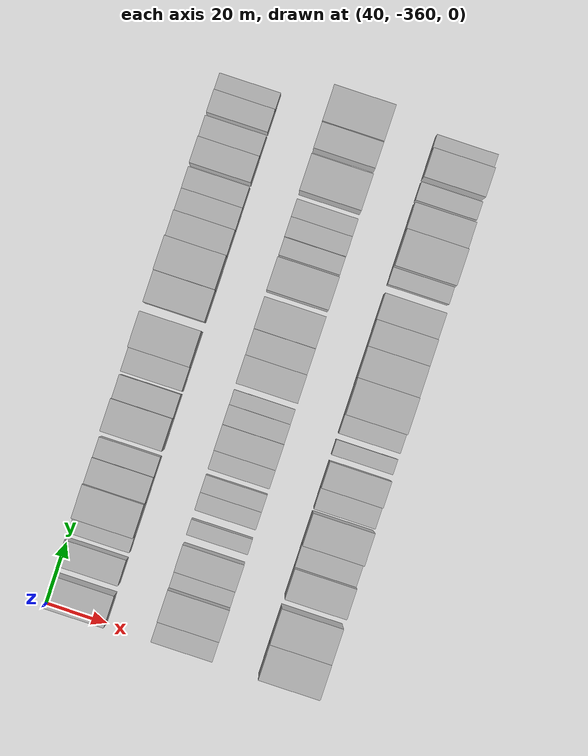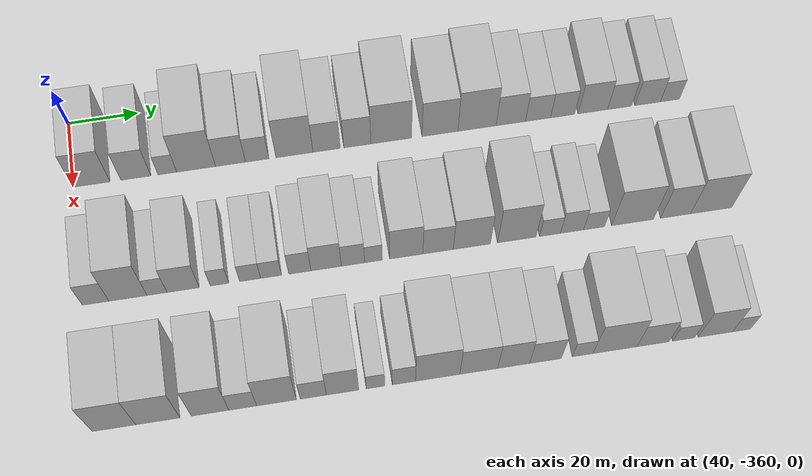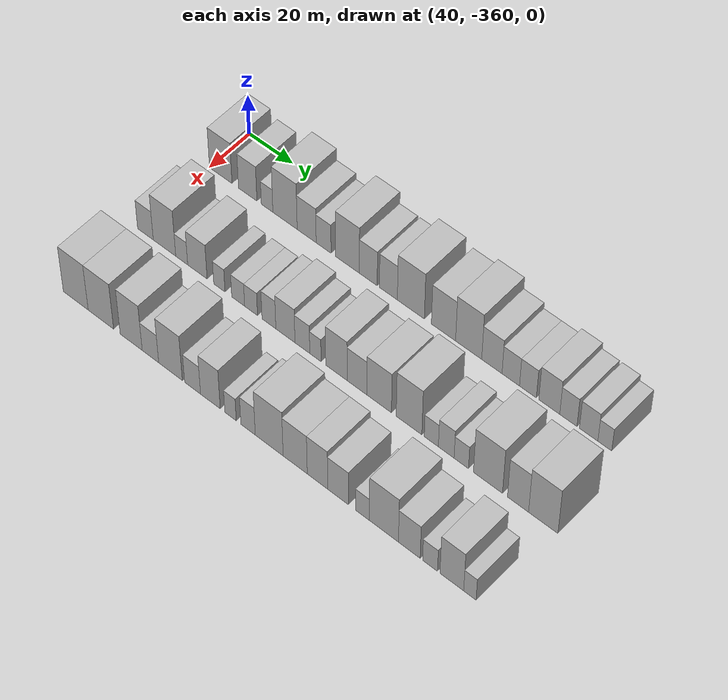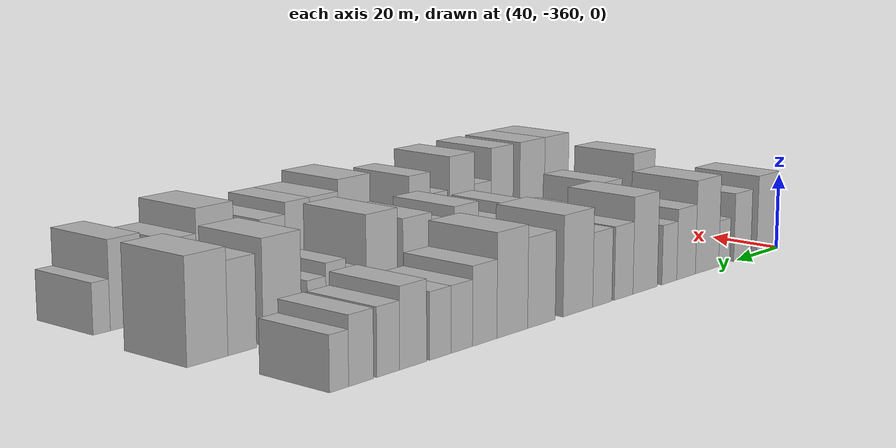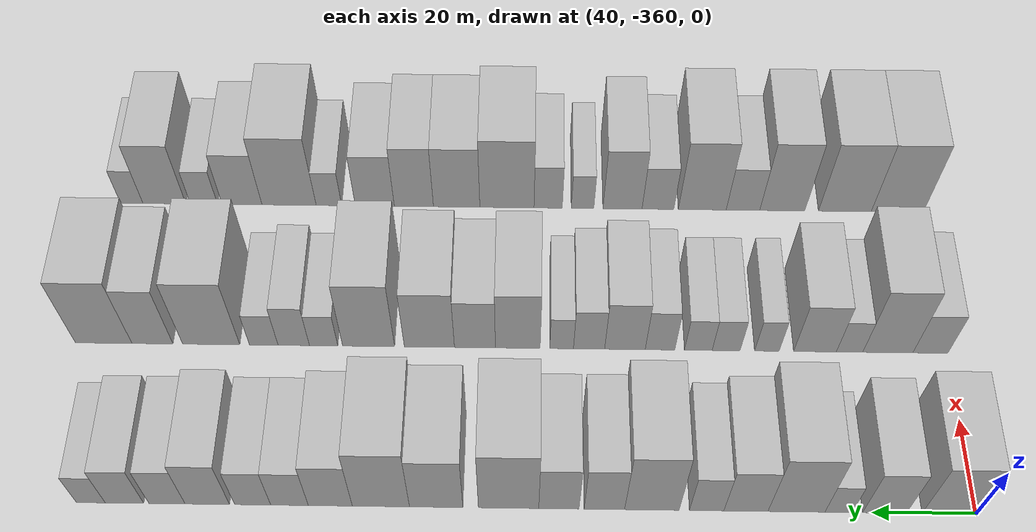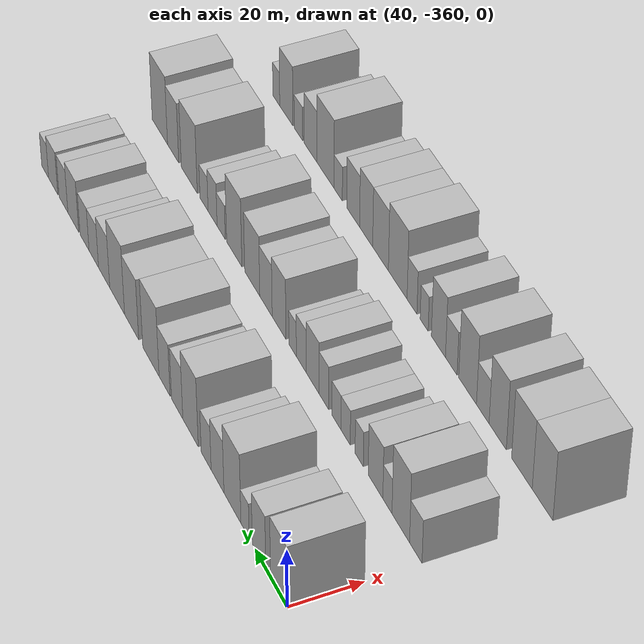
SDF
<sdf version="1.6">
 <world name="default">
  <model name="building_1">
   <static>1</static>
   <pose>50.0000 -354.8118 0 0.000000 0.000000 0.000000</pose>
   <link name="link">
    <pose>0 0 10.50 0 0 0</pose>
    <collision name="collision"><geometry><box><size>20.0000 10.3764 21.0000</size></box></geometry></collision>
    <visual name="visual">
     <cast_shadows>0</cast_shadows>
     <geometry><box><size>20.0000 10.3764 21.0000</size></box></geometry>
     <material>
      <script>
       <uri>model://HANNAS_wall/materials/scripts</uri>
       <uri>model://HANNAS_wall/materials/textures</uri>
       <name>vrc/HANNAS_wall</name>
      </script>
     </material>
    </visual>
   </link>
  </model>
  <model name="building_2">
   <static>1</static>
   <pose>50.0000 -342.4042 0 0.000000 0.000000 0.000000</pose>
   <link name="link">
    <pose>0 0 9.00 0 0 0</pose>
    <collision name="collision"><geometry><box><size>20.0000 8.4388 18.0000</size></box></geometry></collision>
    <visual name="visual">
     <cast_shadows>0</cast_shadows>
     <geometry><box><size>20.0000 8.4388 18.0000</size></box></geometry>
     <material>
      <script>
       <uri>model://HANNAS_wall/materials/scripts</uri>
       <uri>model://HANNAS_wall/materials/textures</uri>
       <name>vrc/HANNAS_wall</name>
      </script>
     </material>
    </visual>
   </link>
  </model>
  <model name="building_3">
   <static>1</static>
   <pose>50.0000 -333.5598 0 0.000000 0.000000 0.000000</pose>
   <link name="link">
    <pose>0 0 6.00 0 0 0</pose>
    <collision name="collision"><geometry><box><size>20.0000 5.2500 12.0000</size></box></geometry></collision>
    <visual name="visual">
     <cast_shadows>0</cast_shadows>
     <geometry><box><size>20.0000 5.2500 12.0000</size></box></geometry>
     <material>
      <script>
       <uri>model://HANNAS_wall/materials/scripts</uri>
       <uri>model://HANNAS_wall/materials/textures</uri>
       <name>vrc/HANNAS_wall</name>
      </script>
     </material>
    </visual>
   </link>
  </model>
  <model name="building_4">
   <static>1</static>
   <pose>50.0000 -325.4387 0 0.000000 0.000000 0.000000</pose>
   <link name="link">
    <pose>0 0 12.00 0 0 0</pose>
    <collision name="collision"><geometry><box><size>20.0000 10.9921 24.0000</size></box></geometry></collision>
    <visual name="visual">
     <cast_shadows>0</cast_shadows>
     <geometry><box><size>20.0000 10.9921 24.0000</size></box></geometry>
     <material>
      <script>
       <uri>model://HANNAS_wall/materials/scripts</uri>
       <uri>model://HANNAS_wall/materials/textures</uri>
       <name>vrc/HANNAS_wall</name>
      </script>
     </material>
    </visual>
   </link>
  </model>
  <model name="building_5">
   <static>1</static>
   <pose>50.0000 -315.6908 0 0.000000 0.000000 0.000000</pose>
   <link name="link">
    <pose>0 0 9.00 0 0 0</pose>
    <collision name="collision"><geometry><box><size>20.0000 8.5036 18.0000</size></box></geometry></collision>
    <visual name="visual">
     <cast_shadows>0</cast_shadows>
     <geometry><box><size>20.0000 8.5036 18.0000</size></box></geometry>
     <material>
      <script>
       <uri>model://HANNAS_wall/materials/scripts</uri>
       <uri>model://HANNAS_wall/materials/textures</uri>
       <name>vrc/HANNAS_wall</name>
      </script>
     </material>
    </visual>
   </link>
  </model>
  <model name="building_6">
   <static>1</static>
   <pose>50.0000 -308.1263 0 0.000000 0.000000 0.000000</pose>
   <link name="link">
    <pose>0 0 7.50 0 0 0</pose>
    <collision name="collision"><geometry><box><size>20.0000 6.6255 15.0000</size></box></geometry></collision>
    <visual name="visual">
     <cast_shadows>0</cast_shadows>
     <geometry><box><size>20.0000 6.6255 15.0000</size></box></geometry>
     <material>
      <script>
       <uri>model://HANNAS_wall/materials/scripts</uri>
       <uri>model://HANNAS_wall/materials/textures</uri>
       <name>vrc/HANNAS_wall</name>
      </script>
     </material>
    </visual>
   </link>
  </model>
  <model name="building_7">
   <static>1</static>
   <pose>50.0000 -297.5512 0 0.000000 0.000000 0.000000</pose>
   <link name="link">
    <pose>0 0 12.00 0 0 0</pose>
    <collision name="collision"><geometry><box><size>20.0000 10.5247 24.0000</size></box></geometry></collision>
    <visual name="visual">
     <cast_shadows>0</cast_shadows>
     <geometry><box><size>20.0000 10.5247 24.0000</size></box></geometry>
     <material>
      <script>
       <uri>model://HANNAS_wall/materials/scripts</uri>
       <uri>model://HANNAS_wall/materials/textures</uri>
       <name>vrc/HANNAS_wall</name>
      </script>
     </material>
    </visual>
   </link>
  </model>
  <model name="building_8">
   <static>1</static>
   <pose>50.0000 -288.3917 0 0.000000 0.000000 0.000000</pose>
   <link name="link">
    <pose>0 0 9.00 0 0 0</pose>
    <collision name="collision"><geometry><box><size>20.0000 7.7943 18.0000</size></box></geometry></collision>
    <visual name="visual">
     <cast_shadows>0</cast_shadows>
     <geometry><box><size>20.0000 7.7943 18.0000</size></box></geometry>
     <material>
      <script>
       <uri>model://HANNAS_wall/materials/scripts</uri>
       <uri>model://HANNAS_wall/materials/textures</uri>
       <name>vrc/HANNAS_wall</name>
      </script>
     </material>
    </visual>
   </link>
  </model>
  <model name="building_9">
   <static>1</static>
   <pose>50.0000 -279.6073 0 0.000000 0.000000 0.000000</pose>
   <link name="link">
    <pose>0 0 9.00 0 0 0</pose>
    <collision name="collision"><geometry><box><size>20.0000 7.7746 18.0000</size></box></geometry></collision>
    <visual name="visual">
     <cast_shadows>0</cast_shadows>
     <geometry><box><size>20.0000 7.7746 18.0000</size></box></geometry>
     <material>
      <script>
       <uri>model://HANNAS_wall/materials/scripts</uri>
       <uri>model://HANNAS_wall/materials/textures</uri>
       <name>vrc/HANNAS_wall</name>
      </script>
     </material>
    </visual>
   </link>
  </model>
  <model name="building_10">
   <static>1</static>
   <pose>50.0000 -269.8928 0 0.000000 0.000000 0.000000</pose>
   <link name="link">
    <pose>0 0 12.00 0 0 0</pose>
    <collision name="collision"><geometry><box><size>20.0000 11.6544 24.0000</size></box></geometry></collision>
    <visual name="visual">
     <cast_shadows>0</cast_shadows>
     <geometry><box><size>20.0000 11.6544 24.0000</size></box></geometry>
     <material>
      <script>
       <uri>model://HANNAS_wall/materials/scripts</uri>
       <uri>model://HANNAS_wall/materials/textures</uri>
       <name>vrc/HANNAS_wall</name>
      </script>
     </material>
    </visual>
   </link>
  </model>
  <model name="building_11">
   <static>1</static>
   <pose>50.0000 -255.9032 0 0.000000 0.000000 0.000000</pose>
   <link name="link">
    <pose>0 0 10.50 0 0 0</pose>
    <collision name="collision"><geometry><box><size>20.0000 10.3248 21.0000</size></box></geometry></collision>
    <visual name="visual">
     <cast_shadows>0</cast_shadows>
     <geometry><box><size>20.0000 10.3248 21.0000</size></box></geometry>
     <material>
      <script>
       <uri>model://HANNAS_wall/materials/scripts</uri>
       <uri>model://HANNAS_wall/materials/textures</uri>
       <name>vrc/HANNAS_wall</name>
      </script>
     </material>
    </visual>
   </link>
  </model>
  <model name="building_12">
   <static>1</static>
   <pose>50.0000 -245.2135 0 0.000000 0.000000 0.000000</pose>
   <link name="link">
    <pose>0 0 12.00 0 0 0</pose>
    <collision name="collision"><geometry><box><size>20.0000 11.0546 24.0000</size></box></geometry></collision>
    <visual name="visual">
     <cast_shadows>0</cast_shadows>
     <geometry><box><size>20.0000 11.0546 24.0000</size></box></geometry>
     <material>
      <script>
       <uri>model://HANNAS_wall/materials/scripts</uri>
       <uri>model://HANNAS_wall/materials/textures</uri>
       <name>vrc/HANNAS_wall</name>
      </script>
     </material>
    </visual>
   </link>
  </model>
  <model name="building_13">
   <static>1</static>
   <pose>50.0000 -235.4273 0 0.000000 0.000000 0.000000</pose>
   <link name="link">
    <pose>0 0 9.00 0 0 0</pose>
    <collision name="collision"><geometry><box><size>20.0000 8.5178 18.0000</size></box></geometry></collision>
    <visual name="visual">
     <cast_shadows>0</cast_shadows>
     <geometry><box><size>20.0000 8.5178 18.0000</size></box></geometry>
     <material>
      <script>
       <uri>model://HANNAS_wall/materials/scripts</uri>
       <uri>model://HANNAS_wall/materials/textures</uri>
       <name>vrc/HANNAS_wall</name>
      </script>
     </material>
    </visual>
   </link>
  </model>
  <model name="building_14">
   <static>1</static>
   <pose>50.0000 -227.5237 0 0.000000 0.000000 0.000000</pose>
   <link name="link">
    <pose>0 0 7.50 0 0 0</pose>
    <collision name="collision"><geometry><box><size>20.0000 7.2894 15.0000</size></box></geometry></collision>
    <visual name="visual">
     <cast_shadows>0</cast_shadows>
     <geometry><box><size>20.0000 7.2894 15.0000</size></box></geometry>
     <material>
      <script>
       <uri>model://HANNAS_wall/materials/scripts</uri>
       <uri>model://HANNAS_wall/materials/textures</uri>
       <name>vrc/HANNAS_wall</name>
      </script>
     </material>
    </visual>
   </link>
  </model>
  <model name="building_15">
   <static>1</static>
   <pose>50.0000 -220.3886 0 0.000000 0.000000 0.000000</pose>
   <link name="link">
    <pose>0 0 7.50 0 0 0</pose>
    <collision name="collision"><geometry><box><size>20.0000 6.9809 15.0000</size></box></geometry></collision>
    <visual name="visual">
     <cast_shadows>0</cast_shadows>
     <geometry><box><size>20.0000 6.9809 15.0000</size></box></geometry>
     <material>
      <script>
       <uri>model://HANNAS_wall/materials/scripts</uri>
       <uri>model://HANNAS_wall/materials/textures</uri>
       <name>vrc/HANNAS_wall</name>
      </script>
     </material>
    </visual>
   </link>
  </model>
  <model name="building_16">
   <static>1</static>
   <pose>50.0000 -211.5945 0 0.000000 0.000000 0.000000</pose>
   <link name="link">
    <pose>0 0 9.00 0 0 0</pose>
    <collision name="collision"><geometry><box><size>20.0000 8.6072 18.0000</size></box></geometry></collision>
    <visual name="visual">
     <cast_shadows>0</cast_shadows>
     <geometry><box><size>20.0000 8.6072 18.0000</size></box></geometry>
     <material>
      <script>
       <uri>model://HANNAS_wall/materials/scripts</uri>
       <uri>model://HANNAS_wall/materials/textures</uri>
       <name>vrc/HANNAS_wall</name>
      </script>
     </material>
    </visual>
   </link>
  </model>
  <model name="building_17">
   <static>1</static>
   <pose>50.0000 -203.7784 0 0.000000 0.000000 0.000000</pose>
   <link name="link">
    <pose>0 0 7.50 0 0 0</pose>
    <collision name="collision"><geometry><box><size>20.0000 7.0250 15.0000</size></box></geometry></collision>
    <visual name="visual">
     <cast_shadows>0</cast_shadows>
     <geometry><box><size>20.0000 7.0250 15.0000</size></box></geometry>
     <material>
      <script>
       <uri>model://HANNAS_wall/materials/scripts</uri>
       <uri>model://HANNAS_wall/materials/textures</uri>
       <name>vrc/HANNAS_wall</name>
      </script>
     </material>
    </visual>
   </link>
  </model>
  <model name="building_18">
   <static>1</static>
   <pose>50.0000 -195.5371 0 0.000000 0.000000 0.000000</pose>
   <link name="link">
    <pose>0 0 7.50 0 0 0</pose>
    <collision name="collision"><geometry><box><size>20.0000 7.4577 15.0000</size></box></geometry></collision>
    <visual name="visual">
     <cast_shadows>0</cast_shadows>
     <geometry><box><size>20.0000 7.4577 15.0000</size></box></geometry>
     <material>
      <script>
       <uri>model://HANNAS_wall/materials/scripts</uri>
       <uri>model://HANNAS_wall/materials/textures</uri>
       <name>vrc/HANNAS_wall</name>
      </script>
     </material>
    </visual>
   </link>
  </model>
  <model name="building_19">
   <static>1</static>
   <pose>50.0000 -189.0080 0 0.000000 0.000000 0.000000</pose>
   <link name="link">
    <pose>0 0 6.00 0 0 0</pose>
    <collision name="collision"><geometry><box><size>20.0000 5.6005 12.0000</size></box></geometry></collision>
    <visual name="visual">
     <cast_shadows>0</cast_shadows>
     <geometry><box><size>20.0000 5.6005 12.0000</size></box></geometry>
     <material>
      <script>
       <uri>model://HANNAS_wall/materials/scripts</uri>
       <uri>model://HANNAS_wall/materials/textures</uri>
       <name>vrc/HANNAS_wall</name>
      </script>
     </material>
    </visual>
   </link>
  </model>
  <model name="building_77">
   <static>1</static>
   <pose>85.0000 -356.3956 0 0.000000 0.000000 0.000000</pose>
   <link name="link">
    <pose>0 0 7.50 0 0 0</pose>
    <collision name="collision"><geometry><box><size>20.0000 7.2088 15.0000</size></box></geometry></collision>
    <visual name="visual">
     <cast_shadows>0</cast_shadows>
     <geometry><box><size>20.0000 7.2088 15.0000</size></box></geometry>
     <material>
      <script>
       <uri>model://HANNAS_wall/materials/scripts</uri>
       <uri>model://HANNAS_wall/materials/textures</uri>
       <name>vrc/HANNAS_wall</name>
      </script>
     </material>
    </visual>
   </link>
  </model>
  <model name="building_78">
   <static>1</static>
   <pose>85.0000 -347.6329 0 0.000000 0.000000 0.000000</pose>
   <link name="link">
    <pose>0 0 12.00 0 0 0</pose>
    <collision name="collision"><geometry><box><size>20.0000 10.3166 24.0000</size></box></geometry></collision>
    <visual name="visual">
     <cast_shadows>0</cast_shadows>
     <geometry><box><size>20.0000 10.3166 24.0000</size></box></geometry>
     <material>
      <script>
       <uri>model://HANNAS_wall/materials/scripts</uri>
       <uri>model://HANNAS_wall/materials/textures</uri>
       <name>vrc/HANNAS_wall</name>
      </script>
     </material>
    </visual>
   </link>
  </model>
  <model name="building_79">
   <static>1</static>
   <pose>85.0000 -339.7502 0 0.000000 0.000000 0.000000</pose>
   <link name="link">
    <pose>0 0 6.00 0 0 0</pose>
    <collision name="collision"><geometry><box><size>20.0000 5.4487 12.0000</size></box></geometry></collision>
    <visual name="visual">
     <cast_shadows>0</cast_shadows>
     <geometry><box><size>20.0000 5.4487 12.0000</size></box></geometry>
     <material>
      <script>
       <uri>model://HANNAS_wall/materials/scripts</uri>
       <uri>model://HANNAS_wall/materials/textures</uri>
       <name>vrc/HANNAS_wall</name>
      </script>
     </material>
    </visual>
   </link>
  </model>
  <model name="building_80">
   <static>1</static>
   <pose>85.0000 -332.6260 0 0.000000 0.000000 0.000000</pose>
   <link name="link">
    <pose>0 0 9.00 0 0 0</pose>
    <collision name="collision"><geometry><box><size>20.0000 8.7995 18.0000</size></box></geometry></collision>
    <visual name="visual">
     <cast_shadows>0</cast_shadows>
     <geometry><box><size>20.0000 8.7995 18.0000</size></box></geometry>
     <material>
      <script>
       <uri>model://HANNAS_wall/materials/scripts</uri>
       <uri>model://HANNAS_wall/materials/textures</uri>
       <name>vrc/HANNAS_wall</name>
      </script>
     </material>
    </visual>
   </link>
  </model>
  <model name="building_81">
   <static>1</static>
   <pose>85.0000 -322.7000 0 0.000000 0.000000 0.000000</pose>
   <link name="link">
    <pose>0 0 6.00 0 0 0</pose>
    <collision name="collision"><geometry><box><size>20.0000 5.0526 12.0000</size></box></geometry></collision>
    <visual name="visual">
     <cast_shadows>0</cast_shadows>
     <geometry><box><size>20.0000 5.0526 12.0000</size></box></geometry>
     <material>
      <script>
       <uri>model://HANNAS_wall/materials/scripts</uri>
       <uri>model://HANNAS_wall/materials/textures</uri>
       <name>vrc/HANNAS_wall</name>
      </script>
     </material>
    </visual>
   </link>
  </model>
  <model name="building_82">
   <static>1</static>
   <pose>85.0000 -314.2909 0 0.000000 0.000000 0.000000</pose>
   <link name="link">
    <pose>0 0 6.00 0 0 0</pose>
    <collision name="collision"><geometry><box><size>20.0000 5.7656 12.0000</size></box></geometry></collision>
    <visual name="visual">
     <cast_shadows>0</cast_shadows>
     <geometry><box><size>20.0000 5.7656 12.0000</size></box></geometry>
     <material>
      <script>
       <uri>model://HANNAS_wall/materials/scripts</uri>
       <uri>model://HANNAS_wall/materials/textures</uri>
       <name>vrc/HANNAS_wall</name>
      </script>
     </material>
    </visual>
   </link>
  </model>
  <model name="building_83">
   <static>1</static>
   <pose>85.0000 -308.5526 0 0.000000 0.000000 0.000000</pose>
   <link name="link">
    <pose>0 0 6.00 0 0 0</pose>
    <collision name="collision"><geometry><box><size>20.0000 5.7109 12.0000</size></box></geometry></collision>
    <visual name="visual">
     <cast_shadows>0</cast_shadows>
     <geometry><box><size>20.0000 5.7109 12.0000</size></box></geometry>
     <material>
      <script>
       <uri>model://HANNAS_wall/materials/scripts</uri>
       <uri>model://HANNAS_wall/materials/textures</uri>
       <name>vrc/HANNAS_wall</name>
      </script>
     </material>
    </visual>
   </link>
  </model>
  <model name="building_84">
   <static>1</static>
   <pose>85.0000 -300.6448 0 0.000000 0.000000 0.000000</pose>
   <link name="link">
    <pose>0 0 7.50 0 0 0</pose>
    <collision name="collision"><geometry><box><size>20.0000 6.1047 15.0000</size></box></geometry></collision>
    <visual name="visual">
     <cast_shadows>0</cast_shadows>
     <geometry><box><size>20.0000 6.1047 15.0000</size></box></geometry>
     <material>
      <script>
       <uri>model://HANNAS_wall/materials/scripts</uri>
       <uri>model://HANNAS_wall/materials/textures</uri>
       <name>vrc/HANNAS_wall</name>
      </script>
     </material>
    </visual>
   </link>
  </model>
  <model name="building_85">
   <static>1</static>
   <pose>85.0000 -293.4027 0 0.000000 0.000000 0.000000</pose>
   <link name="link">
    <pose>0 0 9.00 0 0 0</pose>
    <collision name="collision"><geometry><box><size>20.0000 8.3795 18.0000</size></box></geometry></collision>
    <visual name="visual">
     <cast_shadows>0</cast_shadows>
     <geometry><box><size>20.0000 8.3795 18.0000</size></box></geometry>
     <material>
      <script>
       <uri>model://HANNAS_wall/materials/scripts</uri>
       <uri>model://HANNAS_wall/materials/textures</uri>
       <name>vrc/HANNAS_wall</name>
      </script>
     </material>
    </visual>
   </link>
  </model>
  <model name="building_86">
   <static>1</static>
   <pose>85.0000 -285.9893 0 0.000000 0.000000 0.000000</pose>
   <link name="link">
    <pose>0 0 7.50 0 0 0</pose>
    <collision name="collision"><geometry><box><size>20.0000 6.4473 15.0000</size></box></geometry></collision>
    <visual name="visual">
     <cast_shadows>0</cast_shadows>
     <geometry><box><size>20.0000 6.4473 15.0000</size></box></geometry>
     <material>
      <script>
       <uri>model://HANNAS_wall/materials/scripts</uri>
       <uri>model://HANNAS_wall/materials/textures</uri>
       <name>vrc/HANNAS_wall</name>
      </script>
     </material>
    </visual>
   </link>
  </model>
  <model name="building_87">
   <static>1</static>
   <pose>85.0000 -280.3194 0 0.000000 0.000000 0.000000</pose>
   <link name="link">
    <pose>0 0 6.00 0 0 0</pose>
    <collision name="collision"><geometry><box><size>20.0000 4.8926 12.0000</size></box></geometry></collision>
    <visual name="visual">
     <cast_shadows>0</cast_shadows>
     <geometry><box><size>20.0000 4.8926 12.0000</size></box></geometry>
     <material>
      <script>
       <uri>model://HANNAS_wall/materials/scripts</uri>
       <uri>model://HANNAS_wall/materials/textures</uri>
       <name>vrc/HANNAS_wall</name>
      </script>
     </material>
    </visual>
   </link>
  </model>
  <model name="building_88">
   <static>1</static>
   <pose>85.0000 -271.2597 0 0.000000 0.000000 0.000000</pose>
   <link name="link">
    <pose>0 0 10.50 0 0 0</pose>
    <collision name="collision"><geometry><box><size>20.0000 9.2269 21.0000</size></box></geometry></collision>
    <visual name="visual">
     <cast_shadows>0</cast_shadows>
     <geometry><box><size>20.0000 9.2269 21.0000</size></box></geometry>
     <material>
      <script>
       <uri>model://HANNAS_wall/materials/scripts</uri>
       <uri>model://HANNAS_wall/materials/textures</uri>
       <name>vrc/HANNAS_wall</name>
      </script>
     </material>
    </visual>
   </link>
  </model>
  <model name="building_89">
   <static>1</static>
   <pose>85.0000 -262.4094 0 0.000000 0.000000 0.000000</pose>
   <link name="link">
    <pose>0 0 9.00 0 0 0</pose>
    <collision name="collision"><geometry><box><size>20.0000 8.4737 18.0000</size></box></geometry></collision>
    <visual name="visual">
     <cast_shadows>0</cast_shadows>
     <geometry><box><size>20.0000 8.4737 18.0000</size></box></geometry>
     <material>
      <script>
       <uri>model://HANNAS_wall/materials/scripts</uri>
       <uri>model://HANNAS_wall/materials/textures</uri>
       <name>vrc/HANNAS_wall</name>
      </script>
     </material>
    </visual>
   </link>
  </model>
  <model name="building_90">
   <static>1</static>
   <pose>85.0000 -252.9855 0 0.000000 0.000000 0.000000</pose>
   <link name="link">
    <pose>0 0 10.50 0 0 0</pose>
    <collision name="collision"><geometry><box><size>20.0000 10.3741 21.0000</size></box></geometry></collision>
    <visual name="visual">
     <cast_shadows>0</cast_shadows>
     <geometry><box><size>20.0000 10.3741 21.0000</size></box></geometry>
     <material>
      <script>
       <uri>model://HANNAS_wall/materials/scripts</uri>
       <uri>model://HANNAS_wall/materials/textures</uri>
       <name>vrc/HANNAS_wall</name>
      </script>
     </material>
    </visual>
   </link>
  </model>
  <model name="building_91">
   <static>1</static>
   <pose>85.0000 -240.4141 0 0.000000 0.000000 0.000000</pose>
   <link name="link">
    <pose>0 0 12.00 0 0 0</pose>
    <collision name="collision"><geometry><box><size>20.0000 10.7686 24.0000</size></box></geometry></collision>
    <visual name="visual">
     <cast_shadows>0</cast_shadows>
     <geometry><box><size>20.0000 10.7686 24.0000</size></box></geometry>
     <material>
      <script>
       <uri>model://HANNAS_wall/materials/scripts</uri>
       <uri>model://HANNAS_wall/materials/textures</uri>
       <name>vrc/HANNAS_wall</name>
      </script>
     </material>
    </visual>
   </link>
  </model>
  <model name="building_92">
   <static>1</static>
   <pose>85.0000 -231.0926 0 0.000000 0.000000 0.000000</pose>
   <link name="link">
    <pose>0 0 6.00 0 0 0</pose>
    <collision name="collision"><geometry><box><size>20.0000 5.8745 12.0000</size></box></geometry></collision>
    <visual name="visual">
     <cast_shadows>0</cast_shadows>
     <geometry><box><size>20.0000 5.8745 12.0000</size></box></geometry>
     <material>
      <script>
       <uri>model://HANNAS_wall/materials/scripts</uri>
       <uri>model://HANNAS_wall/materials/textures</uri>
       <name>vrc/HANNAS_wall</name>
      </script>
     </material>
    </visual>
   </link>
  </model>
  <model name="building_93">
   <static>1</static>
   <pose>85.0000 -224.9007 0 0.000000 0.000000 0.000000</pose>
   <link name="link">
    <pose>0 0 7.50 0 0 0</pose>
    <collision name="collision"><geometry><box><size>20.0000 6.5094 15.0000</size></box></geometry></collision>
    <visual name="visual">
     <cast_shadows>0</cast_shadows>
     <geometry><box><size>20.0000 6.5094 15.0000</size></box></geometry>
     <material>
      <script>
       <uri>model://HANNAS_wall/materials/scripts</uri>
       <uri>model://HANNAS_wall/materials/textures</uri>
       <name>vrc/HANNAS_wall</name>
      </script>
     </material>
    </visual>
   </link>
  </model>
  <model name="building_94">
   <static>1</static>
   <pose>85.0000 -218.6819 0 0.000000 0.000000 0.000000</pose>
   <link name="link">
    <pose>0 0 6.00 0 0 0</pose>
    <collision name="collision"><geometry><box><size>20.0000 5.9282 12.0000</size></box></geometry></collision>
    <visual name="visual">
     <cast_shadows>0</cast_shadows>
     <geometry><box><size>20.0000 5.9282 12.0000</size></box></geometry>
     <material>
      <script>
       <uri>model://HANNAS_wall/materials/scripts</uri>
       <uri>model://HANNAS_wall/materials/textures</uri>
       <name>vrc/HANNAS_wall</name>
      </script>
     </material>
    </visual>
   </link>
  </model>
  <model name="building_95">
   <static>1</static>
   <pose>85.0000 -207.7862 0 0.000000 0.000000 0.000000</pose>
   <link name="link">
    <pose>0 0 12.00 0 0 0</pose>
    <collision name="collision"><geometry><box><size>20.0000 11.8632 24.0000</size></box></geometry></collision>
    <visual name="visual">
     <cast_shadows>0</cast_shadows>
     <geometry><box><size>20.0000 11.8632 24.0000</size></box></geometry>
     <material>
      <script>
       <uri>model://HANNAS_wall/materials/scripts</uri>
       <uri>model://HANNAS_wall/materials/textures</uri>
       <name>vrc/HANNAS_wall</name>
      </script>
     </material>
    </visual>
   </link>
  </model>
  <model name="building_96">
   <static>1</static>
   <pose>85.0000 -195.6012 0 0.000000 0.000000 0.000000</pose>
   <link name="link">
    <pose>0 0 10.50 0 0 0</pose>
    <collision name="collision"><geometry><box><size>20.0000 8.5069 21.0000</size></box></geometry></collision>
    <visual name="visual">
     <cast_shadows>0</cast_shadows>
     <geometry><box><size>20.0000 8.5069 21.0000</size></box></geometry>
     <material>
      <script>
       <uri>model://HANNAS_wall/materials/scripts</uri>
       <uri>model://HANNAS_wall/materials/textures</uri>
       <name>vrc/HANNAS_wall</name>
      </script>
     </material>
    </visual>
   </link>
  </model>
  <model name="building_97">
   <static>1</static>
   <pose>85.0000 -185.4693 0 0.000000 0.000000 0.000000</pose>
   <link name="link">
    <pose>0 0 12.00 0 0 0</pose>
    <collision name="collision"><geometry><box><size>20.0000 11.7568 24.0000</size></box></geometry></collision>
    <visual name="visual">
     <cast_shadows>0</cast_shadows>
     <geometry><box><size>20.0000 11.7568 24.0000</size></box></geometry>
     <material>
      <script>
       <uri>model://HANNAS_wall/materials/scripts</uri>
       <uri>model://HANNAS_wall/materials/textures</uri>
       <name>vrc/HANNAS_wall</name>
      </script>
     </material>
    </visual>
   </link>
  </model>
  <model name="building_161">
   <static>1</static>
   <pose>120.0000 -354.2962 0 0.000000 0.000000 0.000000</pose>
   <link name="link">
    <pose>0 0 12.00 0 0 0</pose>
    <collision name="collision"><geometry><box><size>20.0000 11.4076 24.0000</size></box></geometry></collision>
    <visual name="visual">
     <cast_shadows>0</cast_shadows>
     <geometry><box><size>20.0000 11.4076 24.0000</size></box></geometry>
     <material>
      <script>
       <uri>model://HANNAS_wall/materials/scripts</uri>
       <uri>model://HANNAS_wall/materials/textures</uri>
       <name>vrc/HANNAS_wall</name>
      </script>
     </material>
    </visual>
   </link>
  </model>
  <model name="building_162">
   <static>1</static>
   <pose>120.0000 -342.7983 0 0.000000 0.000000 0.000000</pose>
   <link name="link">
    <pose>0 0 12.00 0 0 0</pose>
    <collision name="collision"><geometry><box><size>20.0000 11.5882 24.0000</size></box></geometry></collision>
    <visual name="visual">
     <cast_shadows>0</cast_shadows>
     <geometry><box><size>20.0000 11.5882 24.0000</size></box></geometry>
     <material>
      <script>
       <uri>model://HANNAS_wall/materials/scripts</uri>
       <uri>model://HANNAS_wall/materials/textures</uri>
       <name>vrc/HANNAS_wall</name>
      </script>
     </material>
    </visual>
   </link>
  </model>
  <model name="building_163">
   <static>1</static>
   <pose>120.0000 -329.0486 0 0.000000 0.000000 0.000000</pose>
   <link name="link">
    <pose>0 0 12.00 0 0 0</pose>
    <collision name="collision"><geometry><box><size>20.0000 9.9110 24.0000</size></box></geometry></collision>
    <visual name="visual">
     <cast_shadows>0</cast_shadows>
     <geometry><box><size>20.0000 9.9110 24.0000</size></box></geometry>
     <material>
      <script>
       <uri>model://HANNAS_wall/materials/scripts</uri>
       <uri>model://HANNAS_wall/materials/textures</uri>
       <name>vrc/HANNAS_wall</name>
      </script>
     </material>
    </visual>
   </link>
  </model>
  <model name="building_164">
   <static>1</static>
   <pose>120.0000 -320.4059 0 0.000000 0.000000 0.000000</pose>
   <link name="link">
    <pose>0 0 7.50 0 0 0</pose>
    <collision name="collision"><geometry><box><size>20.0000 7.3745 15.0000</size></box></geometry></collision>
    <visual name="visual">
     <cast_shadows>0</cast_shadows>
     <geometry><box><size>20.0000 7.3745 15.0000</size></box></geometry>
     <material>
      <script>
       <uri>model://HANNAS_wall/materials/scripts</uri>
       <uri>model://HANNAS_wall/materials/textures</uri>
       <name>vrc/HANNAS_wall</name>
      </script>
     </material>
    </visual>
   </link>
  </model>
  <model name="building_165">
   <static>1</static>
   <pose>120.0000 -311.4605 0 0.000000 0.000000 0.000000</pose>
   <link name="link">
    <pose>0 0 12.00 0 0 0</pose>
    <collision name="collision"><geometry><box><size>20.0000 10.5162 24.0000</size></box></geometry></collision>
    <visual name="visual">
     <cast_shadows>0</cast_shadows>
     <geometry><box><size>20.0000 10.5162 24.0000</size></box></geometry>
     <material>
      <script>
       <uri>model://HANNAS_wall/materials/scripts</uri>
       <uri>model://HANNAS_wall/materials/textures</uri>
       <name>vrc/HANNAS_wall</name>
      </script>
     </material>
    </visual>
   </link>
  </model>
  <model name="building_166">
   <static>1</static>
   <pose>120.0000 -301.7058 0 0.000000 0.000000 0.000000</pose>
   <link name="link">
    <pose>0 0 7.50 0 0 0</pose>
    <collision name="collision"><geometry><box><size>20.0000 6.9933 15.0000</size></box></geometry></collision>
    <visual name="visual">
     <cast_shadows>0</cast_shadows>
     <geometry><box><size>20.0000 6.9933 15.0000</size></box></geometry>
     <material>
      <script>
       <uri>model://HANNAS_wall/materials/scripts</uri>
       <uri>model://HANNAS_wall/materials/textures</uri>
       <name>vrc/HANNAS_wall</name>
      </script>
     </material>
    </visual>
   </link>
  </model>
  <model name="building_167">
   <static>1</static>
   <pose>120.0000 -293.9059 0 0.000000 0.000000 0.000000</pose>
   <link name="link">
    <pose>0 0 10.50 0 0 0</pose>
    <collision name="collision"><geometry><box><size>20.0000 8.6064 21.0000</size></box></geometry></collision>
    <visual name="visual">
     <cast_shadows>0</cast_shadows>
     <geometry><box><size>20.0000 8.6064 21.0000</size></box></geometry>
     <material>
      <script>
       <uri>model://HANNAS_wall/materials/scripts</uri>
       <uri>model://HANNAS_wall/materials/textures</uri>
       <name>vrc/HANNAS_wall</name>
      </script>
     </material>
    </visual>
   </link>
  </model>
  <model name="building_168">
   <static>1</static>
   <pose>120.0000 -285.1209 0 0.000000 0.000000 0.000000</pose>
   <link name="link">
    <pose>0 0 6.00 0 0 0</pose>
    <collision name="collision"><geometry><box><size>20.0000 4.9636 12.0000</size></box></geometry></collision>
    <visual name="visual">
     <cast_shadows>0</cast_shadows>
     <geometry><box><size>20.0000 4.9636 12.0000</size></box></geometry>
     <material>
      <script>
       <uri>model://HANNAS_wall/materials/scripts</uri>
       <uri>model://HANNAS_wall/materials/textures</uri>
       <name>vrc/HANNAS_wall</name>
      </script>
     </material>
    </visual>
   </link>
  </model>
  <model name="building_169">
   <static>1</static>
   <pose>120.0000 -277.5368 0 0.000000 0.000000 0.000000</pose>
   <link name="link">
    <pose>0 0 7.50 0 0 0</pose>
    <collision name="collision"><geometry><box><size>20.0000 6.2046 15.0000</size></box></geometry></collision>
    <visual name="visual">
     <cast_shadows>0</cast_shadows>
     <geometry><box><size>20.0000 6.2046 15.0000</size></box></geometry>
     <material>
      <script>
       <uri>model://HANNAS_wall/materials/scripts</uri>
       <uri>model://HANNAS_wall/materials/textures</uri>
       <name>vrc/HANNAS_wall</name>
      </script>
     </material>
    </visual>
   </link>
  </model>
  <model name="building_170">
   <static>1</static>
   <pose>120.0000 -268.4713 0 0.000000 0.000000 0.000000</pose>
   <link name="link">
    <pose>0 0 12.00 0 0 0</pose>
    <collision name="collision"><geometry><box><size>20.0000 11.9263 24.0000</size></box></geometry></collision>
    <visual name="visual">
     <cast_shadows>0</cast_shadows>
     <geometry><box><size>20.0000 11.9263 24.0000</size></box></geometry>
     <material>
      <script>
       <uri>model://HANNAS_wall/materials/scripts</uri>
       <uri>model://HANNAS_wall/materials/textures</uri>
       <name>vrc/HANNAS_wall</name>
      </script>
     </material>
    </visual>
   </link>
  </model>
  <model name="building_171">
   <static>1</static>
   <pose>120.0000 -257.3953 0 0.000000 0.000000 0.000000</pose>
   <link name="link">
    <pose>0 0 10.50 0 0 0</pose>
    <collision name="collision"><geometry><box><size>20.0000 10.2257 21.0000</size></box></geometry></collision>
    <visual name="visual">
     <cast_shadows>0</cast_shadows>
     <geometry><box><size>20.0000 10.2257 21.0000</size></box></geometry>
     <material>
      <script>
       <uri>model://HANNAS_wall/materials/scripts</uri>
       <uri>model://HANNAS_wall/materials/textures</uri>
       <name>vrc/HANNAS_wall</name>
      </script>
     </material>
    </visual>
   </link>
  </model>
  <model name="building_172">
   <static>1</static>
   <pose>120.0000 -247.9706 0 0.000000 0.000000 0.000000</pose>
   <link name="link">
    <pose>0 0 10.50 0 0 0</pose>
    <collision name="collision"><geometry><box><size>20.0000 8.6237 21.0000</size></box></geometry></collision>
    <visual name="visual">
     <cast_shadows>0</cast_shadows>
     <geometry><box><size>20.0000 8.6237 21.0000</size></box></geometry>
     <material>
      <script>
       <uri>model://HANNAS_wall/materials/scripts</uri>
       <uri>model://HANNAS_wall/materials/textures</uri>
       <name>vrc/HANNAS_wall</name>
      </script>
     </material>
    </visual>
   </link>
  </model>
  <model name="building_173">
   <static>1</static>
   <pose>120.0000 -239.3524 0 0.000000 0.000000 0.000000</pose>
   <link name="link">
    <pose>0 0 9.00 0 0 0</pose>
    <collision name="collision"><geometry><box><size>20.0000 8.6128 18.0000</size></box></geometry></collision>
    <visual name="visual">
     <cast_shadows>0</cast_shadows>
     <geometry><box><size>20.0000 8.6128 18.0000</size></box></geometry>
     <material>
      <script>
       <uri>model://HANNAS_wall/materials/scripts</uri>
       <uri>model://HANNAS_wall/materials/textures</uri>
       <name>vrc/HANNAS_wall</name>
      </script>
     </material>
    </visual>
   </link>
  </model>
  <model name="building_174">
   <static>1</static>
   <pose>120.0000 -229.2285 0 0.000000 0.000000 0.000000</pose>
   <link name="link">
    <pose>0 0 6.00 0 0 0</pose>
    <collision name="collision"><geometry><box><size>20.0000 5.6349 12.0000</size></box></geometry></collision>
    <visual name="visual">
     <cast_shadows>0</cast_shadows>
     <geometry><box><size>20.0000 5.6349 12.0000</size></box></geometry>
     <material>
      <script>
       <uri>model://HANNAS_wall/materials/scripts</uri>
       <uri>model://HANNAS_wall/materials/textures</uri>
       <name>vrc/HANNAS_wall</name>
      </script>
     </material>
    </visual>
   </link>
  </model>
  <model name="building_175">
   <static>1</static>
   <pose>120.0000 -220.4305 0 0.000000 0.000000 0.000000</pose>
   <link name="link">
    <pose>0 0 12.00 0 0 0</pose>
    <collision name="collision"><geometry><box><size>20.0000 11.9612 24.0000</size></box></geometry></collision>
    <visual name="visual">
     <cast_shadows>0</cast_shadows>
     <geometry><box><size>20.0000 11.9612 24.0000</size></box></geometry>
     <material>
      <script>
       <uri>model://HANNAS_wall/materials/scripts</uri>
       <uri>model://HANNAS_wall/materials/textures</uri>
       <name>vrc/HANNAS_wall</name>
      </script>
     </material>
    </visual>
   </link>
  </model>
  <model name="building_176">
   <static>1</static>
   <pose>120.0000 -210.0323 0 0.000000 0.000000 0.000000</pose>
   <link name="link">
    <pose>0 0 9.00 0 0 0</pose>
    <collision name="collision"><geometry><box><size>20.0000 8.8352 18.0000</size></box></geometry></collision>
    <visual name="visual">
     <cast_shadows>0</cast_shadows>
     <geometry><box><size>20.0000 8.8352 18.0000</size></box></geometry>
     <material>
      <script>
       <uri>model://HANNAS_wall/materials/scripts</uri>
       <uri>model://HANNAS_wall/materials/textures</uri>
       <name>vrc/HANNAS_wall</name>
      </script>
     </material>
    </visual>
   </link>
  </model>
  <model name="building_177">
   <static>1</static>
   <pose>120.0000 -201.6175 0 0.000000 0.000000 0.000000</pose>
   <link name="link">
    <pose>0 0 6.00 0 0 0</pose>
    <collision name="collision"><geometry><box><size>20.0000 5.9944 12.0000</size></box></geometry></collision>
    <visual name="visual">
     <cast_shadows>0</cast_shadows>
     <geometry><box><size>20.0000 5.9944 12.0000</size></box></geometry>
     <material>
      <script>
       <uri>model://HANNAS_wall/materials/scripts</uri>
       <uri>model://HANNAS_wall/materials/textures</uri>
       <name>vrc/HANNAS_wall</name>
      </script>
     </material>
    </visual>
   </link>
  </model>
  <model name="building_178">
   <static>1</static>
   <pose>120.0000 -192.8752 0 0.000000 0.000000 0.000000</pose>
   <link name="link">
    <pose>0 0 10.50 0 0 0</pose>
    <collision name="collision"><geometry><box><size>20.0000 9.4903 21.0000</size></box></geometry></collision>
    <visual name="visual">
     <cast_shadows>0</cast_shadows>
     <geometry><box><size>20.0000 9.4903 21.0000</size></box></geometry>
     <material>
      <script>
       <uri>model://HANNAS_wall/materials/scripts</uri>
       <uri>model://HANNAS_wall/materials/textures</uri>
       <name>vrc/HANNAS_wall</name>
      </script>
     </material>
    </visual>
   </link>
  </model>
  <model name="building_179">
   <static>1</static>
   <pose>120.0000 -185.6531 0 0.000000 0.000000 0.000000</pose>
   <link name="link">
    <pose>0 0 6.00 0 0 0</pose>
    <collision name="collision"><geometry><box><size>20.0000 4.9540 12.0000</size></box></geometry></collision>
    <visual name="visual">
     <cast_shadows>0</cast_shadows>
     <geometry><box><size>20.0000 4.9540 12.0000</size></box></geometry>
     <material>
      <script>
       <uri>model://HANNAS_wall/materials/scripts</uri>
       <uri>model://HANNAS_wall/materials/textures</uri>
       <name>vrc/HANNAS_wall</name>
      </script>
     </material>
    </visual>
   </link>
  </model>
 </world>
</sdf>
